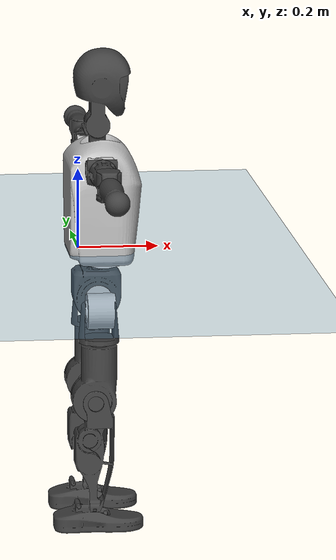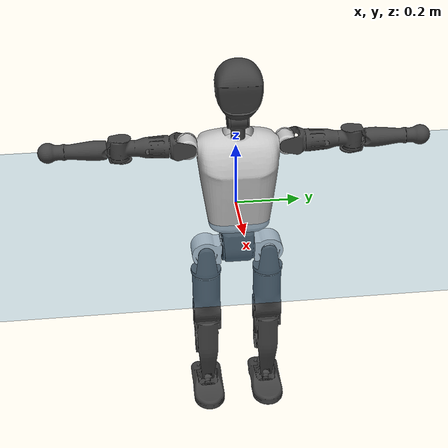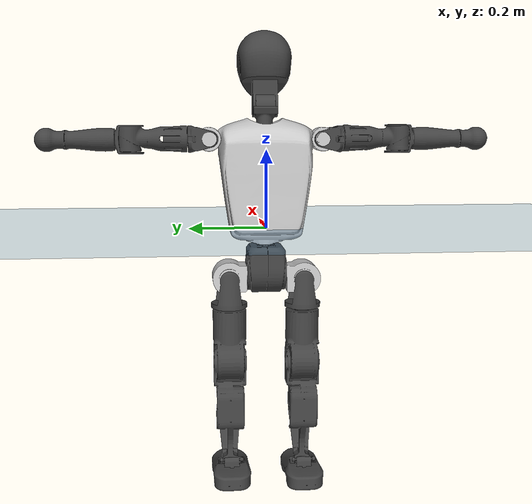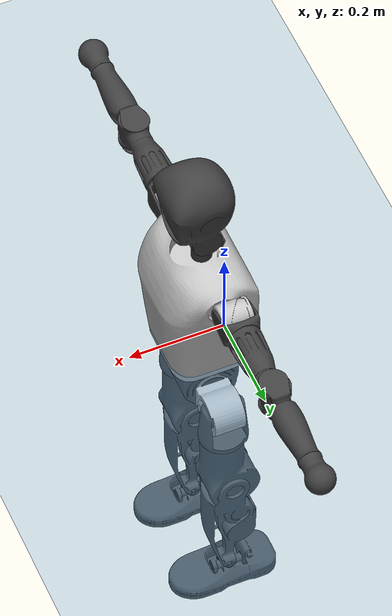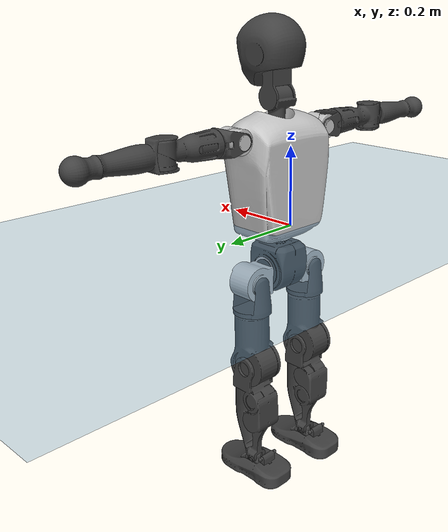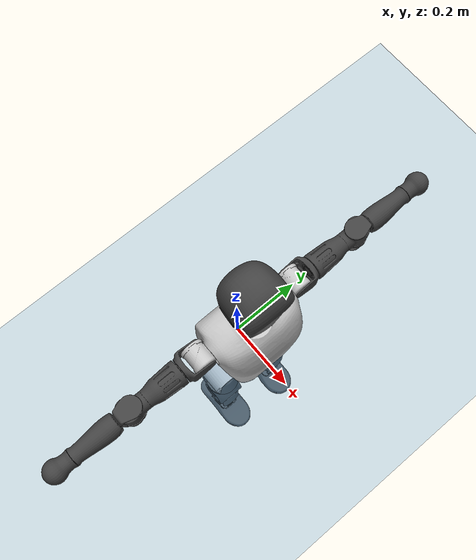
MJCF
<mujoco model="T1">
  <compiler angle="radian" assetdir="assets" balanceinertia="true" inertiafromgeom="false"/>

  <option timestep="0.005" density="1.2" viscosity="2e-05"/>

  <size nkey="1"/>

  <visual>
    <quality shadowsize="8192"/>
    <map shadowclip="0.5"/>
  </visual>

  <default>
    <default class="/">
      <joint armature="0.01" damping="0.01" frictionloss="0.1"/>
      <geom contype="0" conaffinity="0" group="1" solref="-1000 -80"/>
      <site size="0.01 0.005 0.005" group="5"/>
      <general forcelimited="true" biastype="affine" gainprm="25" biasprm="0 -25 -0.6"/>
      <default class="t1">
        <geom rgba="0.25 0.25 0.25 1"/>
        <default class="visual">
          <geom type="mesh" group="2"/>
        </default>
        <default class="collision">
          <geom group="3"/>
        </default>
        <default class="foot">
          <geom size="0.1115 0.05 0.015" type="box" condim="6" group="4" priority="1" solimp="0.015 1 0.015"/>
        </default>
        <default class="reward_collision_sphere">
          <geom group="5" rgba="1 0 0 1"/>
        </default>
      </default>
    </default>
  </default>

  <asset>
    <texture type="skybox" colorspace="auto" name="//unnamed_texture_0" builtin="gradient" rgb1="0.95 0.95 0.95" rgb2="0.95 0.95 0.95" width="100" height="600"/>
    <texture type="2d" colorspace="auto" name="texplane" builtin="checker" rgb1="0.345 0.575 0.748" rgb2="0.345 0.575 0.748" markrgb="1 1 1" width="512" height="512"/>
    <material name="MatPlane" class="/" texture="texplane" texuniform="true" texrepeat="2 2" specular="0.9"/>
    <mesh name="Trunk" class="/" file="Trunk.stl"/>
    <mesh name="H1" class="/" file="H1.stl"/>
    <mesh name="H2" class="/" file="H2.stl"/>
    <mesh name="AL1" class="/" file="AL1.stl"/>
    <mesh name="AL2" class="/" file="AL2.stl"/>
    <mesh name="AL3" class="/" file="AL3.stl"/>
    <mesh name="left_hand_link" class="/" file="left_hand_link.stl"/>
    <mesh name="AR1" class="/" file="AR1.stl"/>
    <mesh name="AR2" class="/" file="AR2.stl"/>
    <mesh name="AR3" class="/" file="AR3.stl"/>
    <mesh name="right_hand_link" class="/" file="right_hand_link.stl"/>
    <mesh name="Waist" class="/" file="Waist.stl"/>
    <mesh name="Hip_Pitch_Left" class="/" file="Hip_Pitch_Left.stl"/>
    <mesh name="Hip_Roll_Left" class="/" file="Hip_Roll_Left.stl"/>
    <mesh name="Hip_Yaw_Left" class="/" file="Hip_Yaw_Left.stl"/>
    <mesh name="Shank_Left" class="/" file="Shank_Left.stl"/>
    <mesh name="Ankle_Cross_Left" class="/" file="Ankle_Cross_Left.stl"/>
    <mesh name="left_foot_link" class="/" file="left_foot_link.stl"/>
    <mesh name="Hip_Pitch_Right" class="/" file="Hip_Pitch_Right.stl"/>
    <mesh name="Hip_Roll_Right" class="/" file="Hip_Roll_Right.stl"/>
    <mesh name="Hip_Yaw_Right" class="/" file="Hip_Yaw_Right.stl"/>
    <mesh name="Shank_Right" class="/" file="Shank_Right.stl"/>
    <mesh name="Ankle_Cross_Right" class="/" file="Ankle_Cross_Right.stl"/>
    <mesh name="right_foot_link" class="/" file="right_foot_link.stl"/>
  </asset>

  <worldbody>
    <geom name="floor" class="/" size="100 100 0.125" type="plane" group="0" material="MatPlane"/>
    <light name="toplight_shadow" class="/" pos="0 0 5" dir="0.0990148 0.0990148 -0.990148" type="directional" ambient="0.04 0.04 0.04" diffuse="0.55 0.55 0.55" specular="0.12 0.12 0.12"/>
    <light name="toplight_fill" class="/" pos="0 0 5" dir="0.0990148 0.0990148 -0.990148" type="directional" castshadow="false" ambient="0.04 0.04 0.04" diffuse="0.3 0.3 0.3" specular="0.08 0.08 0.08"/>
    <body name="trunk" childclass="t1" pos="0.000781422 -0.0020046 0.00131759" quat="0.999999 -0.000396835 0.000371662 -0.000921307">
      <inertial pos="0.0400806 -0.00164925 0.107032" quat="0.999953 -0.0005215 -0.00959368 0.000958002" mass="8.49866" diaginertia="0.0195032 0.0573037 0.0668229"/>
      <joint name="//unnamed_joint_0" type="free" armature="0" damping="0" frictionloss="0"/>
      <geom name="//unnamed_geom_1" class="visual" rgba="0.76 0.76 0.76 1" mesh="Trunk"/>
      <geom name="//unnamed_geom_2" class="collision" size="0.0674059 0.0898745 0.134812" pos="0.0438519 0 0.122996" type="box"/>
      <geom name="//unnamed_geom_3" class="reward_collision_sphere" size="0.103356" pos="0.0438519 0 0.102497"/>
      <geom name="//unnamed_geom_4" class="reward_collision_sphere" size="0.0134812" pos="0.0438519 0.0799341 0"/>
      <geom name="//unnamed_geom_5" class="reward_collision_sphere" size="0.0134812" pos="0.0438519 -0.0799341 0"/>
      <geom name="//unnamed_geom_6" class="reward_collision_sphere" size="0.0134812" pos="0.0438519 0.100623 0.184495"/>
      <geom name="//unnamed_geom_7" class="reward_collision_sphere" size="0.0134812" pos="0.0438519 -0.100623 0.184495"/>
      <site name="imu" pos="0.00659507 0.00521358 -0.00509071" size="0.00898745"/>
      <camera name="track" pos="0 -1.8808 0" quat="0.707107 0.707107 0 0" mode="trackcom"/>
      <camera name="ego_camera" pos="0.0891655 0 0.430487" quat="-0.5 -0.5 0.5 0.5"/>
      <body name="H1" pos="0.0469693 0.00180223 0.24764" quat="1 -5.85684e-06 1.14473e-05 -7.82183e-05">
        <inertial pos="-0.00291681 -0.00222596 0.0601982" quat="0.764323 -0.0239008 0.00877359 0.644331" mass="0.32413" diaginertia="5.02919e-05 0.000165977 0.000169864"/>
        <joint name="AAHead_yaw" pos="0 0 0" axis="-0.00305049 -0.00218012 0.999993" range="-1.55894 1.53846" armature="0.00822155" damping="0.0160645" frictionloss="0.101386"/>
        <geom name="//unnamed_geom_8" class="visual" mesh="H1"/>
        <body name="H2" pos="-0.000952208 -0.000174932 0.0640044" quat="1 -0.000107282 -0.000100608 -6.47149e-05">
          <inertial pos="0.00451409 0.000255831 0.100792" quat="0.988267 0.105035 -0.0752803 -0.0814143" mass="0.445274" diaginertia="0.000415389 0.00136808 0.00195804"/>
          <joint name="Head_pitch" pos="0 0 0" axis="0.000379234 -1 -0.000694695" range="-1.23236 0.357674" armature="0.00786075" damping="0.00443125" frictionloss="0.0944713"/>
          <geom name="//unnamed_geom_9" class="visual" mesh="H2"/>
          <geom name="//unnamed_geom_10" class="collision" size="0.0718996" pos="0.00730864 0 0.112747"/>
          <geom name="//unnamed_geom_11" class="reward_collision_sphere" size="0.0808871" pos="0.0146173 0 0.102497"/>
        </body>
      </body>
      <body name="AL1" pos="0.0423478 0.0996579 0.225457" quat="1 -9.71267e-05 0.000504652 0.000223313">
        <inertial pos="-0.000834799 0.0420727 -0.000452411" quat="0.512001 0.492597 -0.507954 0.487017" mass="0.386392" diaginertia="0.000283948 0.000946082 0.000337926"/>
        <joint name="Left_Shoulder_Pitch" pos="0 0 0" axis="0.000471729 0.999996 0.00268254" range="-3.31492 1.20744" armature="0.00883285" damping="0.00666288" frictionloss="0.0915029"/>
        <geom name="//unnamed_geom_12" class="visual" rgba="0.76 0.76 0.76 1" mesh="AL1"/>
        <body name="AL2" pos="0.000435376 0.044688 0.000384167" quat="1 -6.5945e-05 -0.000147051 0.000103848">
          <inertial pos="0.00339492 0.0352317 -0.000576735" quat="0.487669 0.512436 -0.488129 0.511193" mass="0.118229" diaginertia="8.50706e-05 0.000254643 0.000203019"/>
          <joint name="Left_Shoulder_Roll" pos="0 0 0" axis="-1 -0.000402564 0.000131698" stiffness="0.00346146" range="-1.56155 1.74899" armature="0.00901244" damping="0.00324431" frictionloss="0.0891941"/>
          <geom name="//unnamed_geom_13" class="visual" mesh="AL2"/>
          <body name="AL3" pos="0.00262546 0.0576351 0.000629939" quat="1 -0.000785251 0.00024281 -1.58029e-06">
            <inertial pos="-0.00276012 0.080807 -0.000407013" quat="0.707145 0.707066 -0.00177545 0.000760092" mass="0.751069" diaginertia="0.00267689 0.00913868 0.000706789"/>
            <joint name="Left_Elbow_Pitch" pos="0 0 0" axis="-0.00172087 -0.999997 0.00146973" stiffness="0.00256728" range="-2.26638 2.27148" armature="0.00874666" damping="0.00729353" frictionloss="0.0925413"/>
            <geom name="//unnamed_geom_14" class="visual" mesh="AL3"/>
            <geom name="//unnamed_geom_15" class="collision" size="0.0269624 0.0674059" pos="0 0.0470201 0" quat="0.707105 0.707108 0 0" type="cylinder"/>
            <geom name="//unnamed_geom_16" class="reward_collision_sphere" size="0.0323548"/>
            <body name="left_hand_link" pos="0.000559429 0.13875 -0.00157721" quat="0.999999 0.000529773 0.00094275 -6.22453e-05">
              <inertial pos="-0.000217128 0.102345 0.00134675" quat="0.707726 0.706487 -0.000348488 -0.000278194" mass="0.233864" diaginertia="0.00168902 0.00577292 0.000230025"/>
              <joint name="Left_Elbow_Yaw" pos="0 0 0" axis="-0.00164764 -0.00205732 0.999997" stiffness="0.00462466" range="-2.43788 0.018589" armature="0.00886993" damping="0.0129048" frictionloss="0.0910549"/>
              <geom name="//unnamed_geom_17" class="visual" mesh="left_hand_link"/>
              <geom name="//unnamed_geom_18" class="collision" size="0.0269624 0.0786402" pos="0 0.122252 0" quat="0.707105 0.707108 0 0" type="cylinder"/>
              <geom name="//unnamed_geom_19" class="reward_collision_sphere" size="0.0449373"/>
              <geom name="//unnamed_geom_20" class="reward_collision_sphere" size="0.0314561" pos="0 0.103444 0"/>
              <geom name="//unnamed_geom_21" class="reward_collision_sphere" size="0.0314561" pos="0 0.202186 0"/>
            </body>
          </body>
        </body>
      </body>
      <body name="AR1" pos="0.0416402 -0.101336 0.224896" quat="1 -3.86387e-05 -2.48513e-05 -0.000167516">
        <inertial pos="-0.000397296 -0.0444914 0.00234497" quat="0.504487 0.496428 -0.504297 0.494708" mass="0.383479" diaginertia="0.000284919 0.000920918 0.000330141"/>
        <joint name="Right_Shoulder_Pitch" pos="0 0 0" axis="0.00030836 -0.999946 0.010385" stiffness="0.00135392" range="-1.1947 3.29696" armature="0.00855201" damping="0.0075237" frictionloss="0.0967584"/>
        <geom name="//unnamed_geom_22" class="visual" rgba="0.76 0.76 0.76 1" mesh="AR1"/>
        <body name="AR2" pos="-0.000659583 -0.0432619 0.000581092" quat="1 -4.25765e-06 -5.97833e-06 -4.49282e-06">
          <inertial pos="0.00233908 -0.0357727 0.00022151" quat="0.511539 0.488296 -0.511514 0.488106" mass="0.118925" diaginertia="8.59731e-05 0.00026048 0.000199599"/>
          <joint name="Right_Shoulder_Roll" pos="0 0 0" axis="-0.999964 0.00656765 0.00532161" range="-1.74334 1.56274" armature="0.00797907" damping="0.00776597" frictionloss="0.0906241"/>
          <geom name="//unnamed_geom_23" class="visual" mesh="AR2"/>
          <body name="AR3" pos="-0.000511151 -0.0589837 0.00176964" quat="1 0.000305698 0.000521112 -0.000564982">
            <inertial pos="0.00219629 -0.0797409 0.00216" quat="0.707994 0.706216 0.000501534 0.00157621" mass="0.731685" diaginertia="0.00257112 0.00927978 0.000701118"/>
            <joint name="Right_Elbow_Pitch" pos="0 0 0" axis="5.65392e-05 1 0.000110981" range="-2.25662 2.27267" armature="0.00905583" damping="0.00567789" frictionloss="0.101392"/>
            <geom name="//unnamed_geom_24" class="visual" mesh="AR3"/>
            <geom name="//unnamed_geom_25" class="collision" size="0.0269624 0.0674059" pos="0 -0.0470201 0" quat="0.707105 0.707108 0 0" type="cylinder"/>
            <geom name="//unnamed_geom_26" class="reward_collision_sphere" size="0.0323548"/>
            <body name="right_hand_link" pos="-0.00127091 -0.138768 -0.00168611" quat="1 -4.59976e-05 -3.48444e-05 -2.50135e-05">
              <inertial pos="-0.000470497 -0.103936 0.00131473" quat="0.705863 0.708348 0.00052732 -0.000249351" mass="0.239963" diaginertia="0.00175187 0.00616184 0.000252157"/>
              <joint name="Right_Elbow_Yaw" pos="0 0 0" axis="-0.00709281 0.00713526 0.999949" range="0.020323 2.44221" armature="0.00922271" damping="0.00817417" frictionloss="0.0906685"/>
              <geom name="//unnamed_geom_27" class="visual" mesh="right_hand_link"/>
              <geom name="//unnamed_geom_28" class="collision" size="0.0269624 0.0786402" pos="0 -0.122252 0" quat="0.707105 0.707108 0 0" type="cylinder"/>
              <geom name="//unnamed_geom_29" class="reward_collision_sphere" size="0.0449373"/>
              <geom name="//unnamed_geom_30" class="reward_collision_sphere" size="0.0314561" pos="0 -0.103444 0"/>
              <geom name="//unnamed_geom_31" class="reward_collision_sphere" size="0.0314561" pos="0 -0.202186 0"/>
            </body>
          </body>
        </body>
      </body>
      <body name="Waist" pos="0.0441213 -0.000454898 -0.119327" quat="0.999999 0.00152089 0.000321936 0.000125982">
        <inertial pos="-0.000972009 0.000646832 0.00673372" quat="0.983177 -0.0114936 -0.182225 0.00501332" mass="1.84549" diaginertia="0.00112992 0.00399966 0.00550014"/>
        <joint name="Waist" pos="0 0 0" axis="-0.00286543 0.000533768 0.999996" range="-1.57233 1.55044" armature="0.00900727" damping="0.0132957" frictionloss="0.0883755"/>
        <geom name="//unnamed_geom_32" class="visual" mesh="Waist"/>
        <body name="Hip_Pitch_Left" pos="0.00166911 0.0977259 0.00144675" quat="1 0.000243228 -0.000119728 -9.73895e-05">
          <inertial pos="0.00302972 -0.00653081 -0.018505" quat="0.973221 0.228854 0.0215917 -7.08681e-05" mass="0.748197" diaginertia="0.000367623 0.00109838 0.00144211"/>
          <joint name="Left_Hip_Pitch" pos="0 0 0" axis="0.00215764 0.999996 0.0019978" stiffness="0.00872741" range="-1.81285 1.58809" armature="0.00905867" damping="0.0116202" frictionloss="0.0922863"/>
          <geom name="//unnamed_geom_33" class="visual" rgba="0.76 0.76 0.76 1" mesh="Hip_Pitch_Left"/>
          <body name="Hip_Roll_Left" pos="-0.00145714 -0.000109506 -0.0238983" quat="1 4.3428e-07 2.84428e-07 -4.0504e-07">
            <inertial pos="0.00127461 -0.00247907 -0.0547116" quat="0.707152 -0.0055575 -0.00606693 0.707013" mass="0.276411" diaginertia="0.000348671 0.00106588 0.000592294"/>
            <joint name="Left_Hip_Roll" pos="0 0 0" axis="-0.999995 0.00226113 0.00198422" range="-1.55426 0.201608" armature="0.00859442" damping="0" frictionloss="0.0964882"/>
            <geom name="//unnamed_geom_34" class="visual" mesh="Hip_Roll_Left"/>
            <geom name="//unnamed_geom_35" class="reward_collision_sphere" size="0.049431"/>
            <body name="Hip_Yaw_Left" pos="-0.00011807 -0.00069733 -0.0837823" quat="1 1.24184e-06 5.48785e-05 0.000241116">
              <inertial pos="-0.00530017 -0.00130324 -0.0928435" quat="0.697652 -0.0290739 -0.0319757 0.715132" mass="1.5661" diaginertia="0.00529349 0.0180318 0.00284571"/>
              <joint name="Left_Hip_Yaw" pos="0 0 0" axis="8.2077e-06 0.000100331 -1" range="-1.05525 1.00883" armature="0.00916547" damping="0.00560341" frictionloss="0.0885806"/>
              <geom name="//unnamed_geom_36" class="visual" mesh="Hip_Yaw_Left"/>
              <geom name="//unnamed_geom_37" class="collision" size="0.0449373 0.0718996" type="cylinder"/>
              <body name="Shank_Left" pos="-0.0110058 0.000201886 -0.140145" quat="1 -9.35099e-05 9.37966e-05 -3.09899e-05">
                <inertial pos="-0.00579822 0.000173867 -0.127191" quat="0.997535 0.00224751 -0.0230884 0.0662202" mass="1.24406" diaginertia="0.00724109 0.0243511 0.00203841"/>
                <joint name="Left_Knee_Pitch" pos="0 0 0" axis="-0.00479475 0.999987 -0.00185484" stiffness="6.97081e-05" range="0.000248919 2.3268" armature="0.00950275" damping="0.00146983" frictionloss="0.0875005"/>
                <geom name="//unnamed_geom_38" class="visual" mesh="Shank_Left"/>
                <geom name="//unnamed_geom_39" class="collision" size="0.0449373 0.0674059" pos="0 0 -0.122996" type="cylinder"/>
                <geom name="//unnamed_geom_40" class="reward_collision_sphere" size="0.0584184"/>
                <body name="Ankle_Cross_Left" pos="0.00187532 -0.000280259 -0.286077" quat="1 2.13712e-05 1.59189e-05 1.83155e-05">
                  <inertial pos="-0.00520036 -0.000797695 -0.00816668" quat="0.44484 0.550648 0.550112 0.443036" mass="0.0527777" diaginertia="6.00102e-06 1.87734e-05 1.2655e-05"/>
                  <joint name="Left_Ankle_Pitch" pos="0 0 0" axis="-9.22792e-05 1 -4.95311e-05" range="-0.872152 0.348591" armature="0.0100881" damping="0.0193508" frictionloss="0.0922543"/>
                  <geom name="//unnamed_geom_41" class="visual" mesh="Ankle_Cross_Left"/>
                  <body name="left_foot_link" pos="-1.55833e-05 -0.0015893 -0.0110747" quat="0.999999 -0.00049344 0.000370635 0.00109899">
                    <inertial pos="-0.00159416 1.61271e-05 -0.00900775" quat="0.00256846 0.629297 0.000879105 0.77716" mass="0.514889" diaginertia="0.000581297 0.00176137 0.00251841"/>
                    <joint name="Left_Ankle_Roll" pos="0 0 0" axis="-0.999899 0.00147582 0.0141205" range="-0.459134 0.455931" armature="0.00897965" damping="0" frictionloss="0.0940826"/>
                    <geom name="//unnamed_geom_42" class="visual" mesh="left_foot_link"/>
                    <geom name="left_foot" class="foot" size="0.109333 0.0415658 0.0141358" pos="0.00730864 0 -0.0153746"/>
                    <geom name="//unnamed_geom_44" class="reward_collision_sphere" size="0.0467348" pos="0.00730864 0 -0.0153746"/>
                    <geom name="//unnamed_geom_45" class="reward_collision_sphere" size="0.0269624" pos="0.0694321 -0.0216292 -0.0153746"/>
                    <geom name="//unnamed_geom_46" class="reward_collision_sphere" size="0.0269624" pos="-0.0511605 -0.0216292 -0.0153746"/>
                    <site name="left_foot" class="foot" pos="0.00730864 0 -0.0153746" size="0.00898745"/>
                  </body>
                </body>
              </body>
            </body>
          </body>
        </body>
        <body name="Hip_Pitch_Right" pos="0.00124015 -0.0997455 -0.000826882" quat="1 0.000146446 -5.58278e-05 -5.38337e-07">
          <inertial pos="-0.00211753 0.00496882 -0.0174711" quat="0.973342 -0.228467 0.0198754 -0.00353692" mass="0.738566" diaginertia="0.000383628 0.00109692 0.00139813"/>
          <joint name="Right_Hip_Pitch" pos="0 0 0" axis="-0.00352339 -0.999994 -0.000212498" range="-1.55235 1.78361" armature="0.00937276" damping="0" frictionloss="0.0865792"/>
          <geom name="//unnamed_geom_47" class="visual" rgba="0.76 0.76 0.76 1" mesh="Hip_Pitch_Right"/>
          <body name="Hip_Roll_Right" pos="-0.00186584 0.000524354 -0.0215378" quat="1 -6.24017e-05 0.000247063 -0.000331263">
            <inertial pos="0.000155118 -0.00121403 -0.0538156" quat="0.713053 -0.00443745 -0.0106293 0.701015" mass="0.277831" diaginertia="0.000375524 0.00113342 0.000580558"/>
            <joint name="Right_Hip_Roll" pos="0 0 0" axis="-0.999987 -0.00374346 -0.00341206" range="-0.193404 1.57799" armature="0.0086777" damping="0.00338967" frictionloss="0.0943205"/>
            <geom name="//unnamed_geom_48" class="visual" mesh="Hip_Roll_Right"/>
            <geom name="//unnamed_geom_49" class="reward_collision_sphere" size="0.049431"/>
            <body name="Hip_Yaw_Right" pos="-0.0015805 0.000601313 -0.0860603" quat="1 -0.00051688 -9.07116e-05 0.000233171">
              <inertial pos="-0.00503292 0.000242385 -0.0910822" quat="0.714464 -0.0305163 -0.0330998 0.698222" mass="1.55818" diaginertia="0.00551723 0.0187865 0.00301504"/>
              <joint name="Right_Hip_Yaw" pos="0 0 0" axis="1.61751e-05 -0.000925062 -1" stiffness="0.00150082" range="-0.999967 1.01193" armature="0.00884909" damping="0.0217192" frictionloss="0.0942141"/>
              <geom name="//unnamed_geom_50" class="visual" mesh="Hip_Yaw_Right"/>
              <geom name="//unnamed_geom_51" class="collision" size="0.0449373 0.0718996" type="cylinder"/>
              <body name="Shank_Right" pos="-0.0117011 0.00039148 -0.139475" quat="1 -0.000237913 0.000193269 0.000199184">
                <inertial pos="-0.00439668 -0.00204351 -0.125519" quat="0.999059 0.00413696 -0.0260669 -0.0344027" mass="1.32445" diaginertia="0.00737267 0.0255411 0.00215104"/>
                <joint name="Right_Knee_Pitch" pos="0 0 0" axis="0.0087282 -0.999962 0.000111184" range="-2.38546 0.000302671" armature="0.00942857" damping="0.00850476" frictionloss="0.0906303"/>
                <geom name="//unnamed_geom_52" class="visual" mesh="Shank_Right"/>
                <geom name="//unnamed_geom_53" class="collision" size="0.0449373 0.0674059" pos="0 0 -0.122996" type="cylinder"/>
                <geom name="//unnamed_geom_54" class="reward_collision_sphere" size="0.0584184"/>
                <body name="Ankle_Cross_Right" pos="0.000114184 -0.00162571 -0.288504" quat="1 -4.96576e-06 -2.23282e-06 1.06731e-05">
                  <inertial pos="-0.00340273 0.000379323 -0.0082262" quat="0.442913 0.550748 0.551305 0.443359" mass="0.0529711" diaginertia="6.25227e-06 1.88191e-05 1.32627e-05"/>
                  <joint name="Right_Ankle_Pitch" pos="0 0 0" axis="-0.0075645 -0.999956 0.00555845" range="-0.338503 0.841043" armature="0.00896409" damping="0.0083167" frictionloss="0.088827"/>
                  <geom name="//unnamed_geom_55" class="visual" mesh="Ankle_Cross_Right"/>
                  <body name="right_foot_link" pos="0.000282654 0.000799934 -0.010805" quat="1 -7.56401e-05 7.15449e-05 0.000101095">
                    <inertial pos="-1.37527e-05 0.00178221 -0.0118842" quat="-0.00289072 0.618124 0.00880444 0.786026" mass="0.48394" diaginertia="0.000545624 0.00169321 0.0023206"/>
                    <joint name="Right_Ankle_Roll" pos="0 0 0" axis="-0.999986 0.00408834 0.00335867" range="-0.472697 0.487159" armature="0.00779635" damping="0" frictionloss="0.0949627"/>
                    <geom name="//unnamed_geom_56" class="visual" mesh="right_foot_link"/>
                    <geom name="right_foot" class="foot" size="0.0969729 0.0421314 0.0143584" pos="0.00730864 0 -0.0153746"/>
                    <geom name="//unnamed_geom_58" class="reward_collision_sphere" size="0.0359498"/>
                    <geom name="//unnamed_geom_59" class="reward_collision_sphere" size="0.0269624" pos="0.00730864 0 -0.0153746"/>
                    <geom name="//unnamed_geom_60" class="reward_collision_sphere" size="0.0269624" pos="0.0694321 0.0216292 -0.0153746"/>
                    <geom name="//unnamed_geom_61" class="reward_collision_sphere" size="0.0269624" pos="-0.0511605 0.0216292 -0.0153746"/>
                    <site name="right_foot" class="foot" pos="0.00730864 0 -0.0153746" size="0.00898745"/>
                  </body>
                </body>
              </body>
            </body>
          </body>
        </body>
      </body>
    </body>
  </worldbody>

  <contact>
    <pair class="/" geom1="floor" geom2="left_foot" name="//unnamed_contact_0"/>
    <pair class="/" geom1="floor" geom2="right_foot" name="//unnamed_contact_1"/>
  </contact>

  <actuator>
    <general name="AAHead_yaw" class="/" joint="AAHead_yaw" forcerange="-6.36068 6.36068" gainprm="22.7344" biasprm="0 -22.7344 -0.529042"/>
    <general name="Head_pitch" class="/" joint="Head_pitch" forcerange="-6.34602 6.34602" gainprm="22.7344" biasprm="0 -22.7344 -0.529042"/>
    <general name="Left_Shoulder_Pitch" class="/" joint="Left_Shoulder_Pitch" forcerange="-14.5581 14.5581" gainprm="22.7344" biasprm="0 -22.7344 -0.529042"/>
    <general name="Left_Shoulder_Roll" class="/" joint="Left_Shoulder_Roll" forcerange="-14.81 14.81" gainprm="22.7344" biasprm="0 -22.7344 -0.529042"/>
    <general name="Left_Elbow_Pitch" class="/" joint="Left_Elbow_Pitch" forcerange="-16.7544 16.7544" gainprm="22.7344" biasprm="0 -22.7344 -0.529042"/>
    <general name="Left_Elbow_Yaw" class="/" joint="Left_Elbow_Yaw" forcerange="-16.436 16.436" gainprm="22.7344" biasprm="0 -22.7344 -0.529042"/>
    <general name="Right_Shoulder_Pitch" class="/" joint="Right_Shoulder_Pitch" forcerange="-16.6264 16.6264" gainprm="22.7344" biasprm="0 -22.7344 -0.529042"/>
    <general name="Right_Shoulder_Roll" class="/" joint="Right_Shoulder_Roll" forcerange="-16.8891 16.8891" gainprm="22.7344" biasprm="0 -22.7344 -0.529042"/>
    <general name="Right_Elbow_Pitch" class="/" joint="Right_Elbow_Pitch" forcerange="-15.8079 15.8079" gainprm="22.7344" biasprm="0 -22.7344 -0.529042"/>
    <general name="Right_Elbow_Yaw" class="/" joint="Right_Elbow_Yaw" forcerange="-16.7488 16.7488" gainprm="22.7344" biasprm="0 -22.7344 -0.529042"/>
    <general name="Waist" class="/" joint="Waist" forcerange="-25.3293 25.3293" gainprm="22.7344" biasprm="0 -22.7344 -0.529042"/>
    <general name="Left_Hip_Pitch" class="/" joint="Left_Hip_Pitch" forcerange="-40.435 40.435" gainprm="22.7344" biasprm="0 -22.7344 -0.529042"/>
    <general name="Left_Hip_Roll" class="/" joint="Left_Hip_Roll" forcerange="-26.1012 26.1012" gainprm="22.7344" biasprm="0 -22.7344 -0.529042"/>
    <general name="Left_Hip_Yaw" class="/" joint="Left_Hip_Yaw" forcerange="-26.7383 26.7383" gainprm="22.7344" biasprm="0 -22.7344 -0.529042"/>
    <general name="Left_Knee_Pitch" class="/" joint="Left_Knee_Pitch" forcerange="-53.9303 53.9303" gainprm="22.7344" biasprm="0 -22.7344 -0.529042"/>
    <general name="Left_Ankle_Pitch" class="/" joint="Left_Ankle_Pitch" forcerange="-18.0037 18.0037" gainprm="22.7344" biasprm="0 -22.7344 -0.529042"/>
    <general name="Left_Ankle_Roll" class="/" joint="Left_Ankle_Roll" forcerange="-12.9798 12.9798" gainprm="22.7344" biasprm="0 -22.7344 -0.529042"/>
    <general name="Right_Hip_Pitch" class="/" joint="Right_Hip_Pitch" forcerange="-43.7338 43.7338" gainprm="22.7344" biasprm="0 -22.7344 -0.529042"/>
    <general name="Right_Hip_Roll" class="/" joint="Right_Hip_Roll" forcerange="-29.4861 29.4861" gainprm="22.7344" biasprm="0 -22.7344 -0.529042"/>
    <general name="Right_Hip_Yaw" class="/" joint="Right_Hip_Yaw" forcerange="-27.3314 27.3314" gainprm="22.7344" biasprm="0 -22.7344 -0.529042"/>
    <general name="Right_Knee_Pitch" class="/" joint="Right_Knee_Pitch" forcerange="-53.74 53.74" gainprm="22.7344" biasprm="0 -22.7344 -0.529042"/>
    <general name="Right_Ankle_Pitch" class="/" joint="Right_Ankle_Pitch" forcerange="-16.2959 16.2959" gainprm="22.7344" biasprm="0 -22.7344 -0.529042"/>
    <general name="Right_Ankle_Roll" class="/" joint="Right_Ankle_Roll" forcerange="-14.3285 14.3285" gainprm="22.7344" biasprm="0 -22.7344 -0.529042"/>
  </actuator>

  <sensor>
    <gyro site="imu" name="imu_angular_velocity"/>
    <velocimeter site="imu" name="imu_linear_velocity"/>
    <framelinvel objtype="site" objname="left_foot" name="left_foot_global_linear_velocity"/>
    <framelinvel objtype="site" objname="right_foot" name="right_foot_global_linear_velocity"/>
  </sensor>

  <keyframe>
    <key name="home" qpos="0 0 0.6385 1 0 0 0 0 0 0 1.4 0 -0.4 0 -1.4 0 0.4 0 -0.4 0 0 0.8 -0.4 0 0.4 0 0 -0.8 0.4 0"/>
  </keyframe>
</mujoco>
